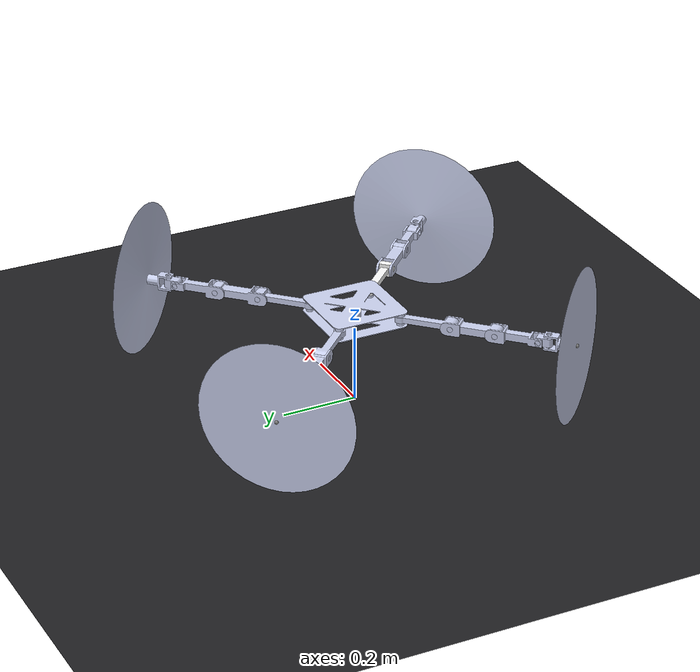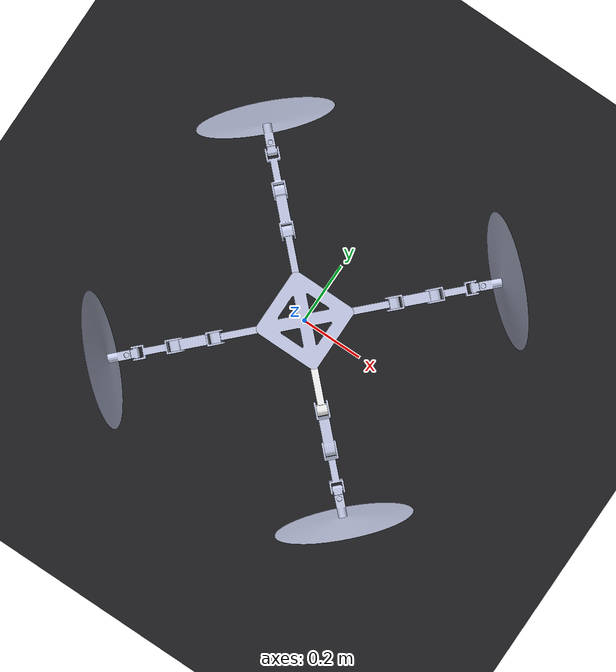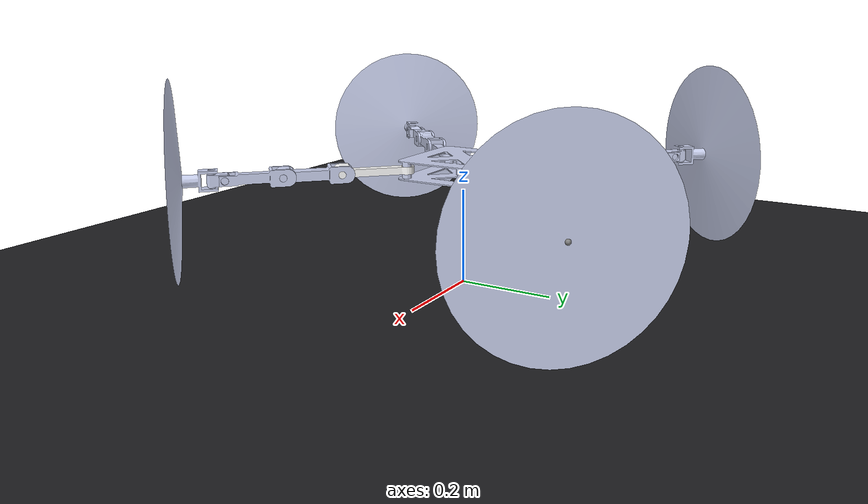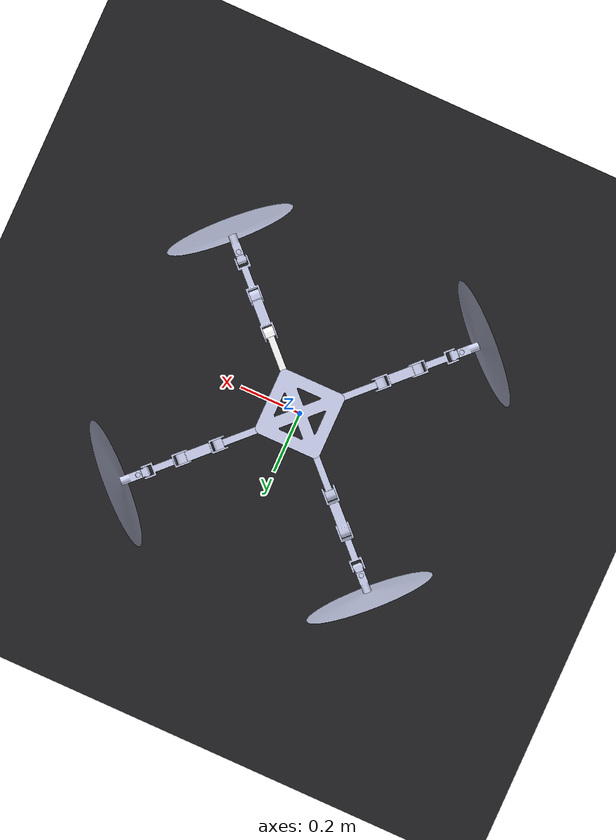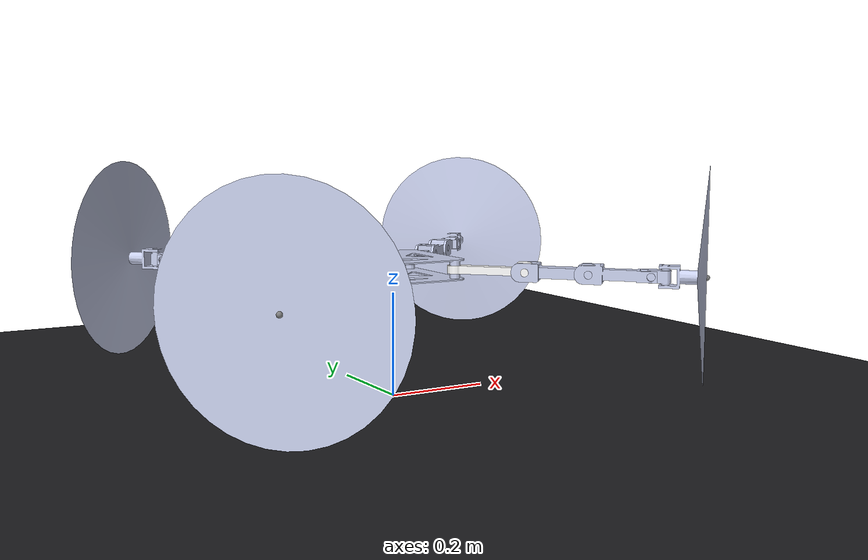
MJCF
<mujoco model="JellyFish">
  <include file="JellyFish.xml"/>

  <visual>
    <headlight diffuse="0.6 0.6 0.6" ambient="0.1 0.1 0.1" specular="0 0 0"/>
    <rgba haze="0.3 0.3 0.3 1"/>
    <global azimuth="45" elevation="35.264" ellipsoidinertia="false"/>
  </visual>

  <asset>
    <texture type="skybox" builtin="gradient" rgb1="0.5 0.5 0.5" rgb2="0 0 0" width="512" height="3072"/>
    <texture type="2d" name="groundplane" builtin="checker" mark="edge" rgb1="0.15 0.15 0.17" rgb2="0.1 0.1 0.1"
      markrgb="0.3 0.3 0.3" width="100" height="100"/>
    <material name="groundplane" texture="groundplane" texuniform="true" texrepeat="2 2" reflectance="0"/>
  </asset>

  <worldbody>
    <light pos="0 0 10" dir="0 0 -1" directional="true"/>
    <geom name="floor" size="0 0 0.05" type="plane" material="groundplane" contype="2" conaffinity="1"/>
  </worldbody>
</mujoco>

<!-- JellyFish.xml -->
<mujoco model="JellyFish">
  <compiler angle="radian"/>

  <default>
    <default class="BLDC">
      <motor ctrlrange="0 13"/>
      <default class="visual">
        <geom group="2" type="mesh" contype="1" conaffinity="2"/>
      </default>
      <default class="collision">
        <geom group="3" type="box" contype="1" conaffinity="2"/>
        <default class="rotor">
          <geom type="ellipsoid" size=".13 .13 .01" contype="1" conaffinity="2"/>
        </default>
      </default>
      <site group="5"/>
    </default>
  </default>

  <asset>
    <mesh name="BODY" file="BODY.STL"/>
    <mesh name="Arm1_Link1" file="Arm1_Link1.STL"/>
    <mesh name="Arm1_Link2" file="Arm1_Link2.STL"/>
    <mesh name="Arm1_Link3" file="Arm1_Link3.STL"/>
    <mesh name="Arm1_Link4" file="Arm1_Link4.STL"/>
    <mesh name="Arm1_Link5" file="Arm1_Link5.STL"/>
    <mesh name="Arm2_Link1" file="Arm2_Link1.STL"/>
    <mesh name="Arm2_Link2" file="Arm2_Link2.STL"/>
    <mesh name="Arm2_Link3" file="Arm2_Link3.STL"/>
    <mesh name="Arm2_Link4" file="Arm2_Link4.STL"/>
    <mesh name="Arm2_Link5" file="Arm2_Link5.STL"/>
    <mesh name="Arm3_Link1" file="Arm3_Link1.STL"/>
    <mesh name="Arm3_Link2" file="Arm3_Link2.STL"/>
    <mesh name="Arm3_Link3" file="Arm3_Link3.STL"/>
    <mesh name="Arm3_Link4" file="Arm3_Link4.STL"/>
    <mesh name="Arm3_Link5" file="Arm3_Link5.STL"/>
    <mesh name="Arm4_Link1" file="Arm4_Link1.STL"/>
    <mesh name="Arm4_Link2" file="Arm4_Link2.STL"/>
    <mesh name="Arm4_Link3" file="Arm4_Link3.STL"/>
    <mesh name="Arm4_Link4" file="Arm4_Link4.STL"/>
    <mesh name="Arm4_Link5" file="Arm4_Link5.STL"/>
  </asset>

  <worldbody>
    <body name="BODY" pos="0 0 0.25">
      <joint type="free"/>
      <inertial pos="0 0 0" quat="1 1 0 0" mass="0.6845345" diaginertia="0.00360091 0.00691789 0.00360702"/>
      <geom type="mesh" mesh="BODY" rgba="0.79216 0.81961 0.93333 1" contype="1" conaffinity="2"/>
      <site name="imu" pos="0 0 0" quat="1 0 0 0"/>
      <geom class="collision" size="0.12 0.12 .02" pos="0 0 0" contype="1" conaffinity="2"/>

    <body name="Arm1_Link1" pos="0.0848528 0.0848528 0" quat="0.382683 0 0 -0.92388">
      <inertial pos="-0.0628864 -0.00030071 0.0115046" quat="0.432962 0.567439 0.525068 0.46353" mass="0.374106" diaginertia="0.00164276 0.00160619 0.000141896"/>
      <joint name="Arm3_joint1" pos="0 0 0" axis="0 0 1"/>
      <geom type="mesh" rgba="0.792157 0.819608 0.933333 1" mesh="Arm1_Link1" contype="1" conaffinity="2"/>
      <body name="Arm1_Link2" pos="-0.134 0 0" quat="0.707107 0.707107 0 0">
        <inertial pos="-0.0812353 0 0.00033993" quat="0.501818 0.498175 0.498175 0.501818" mass="0.13658" diaginertia="0.000183 0.000171008 2.96325e-05"/>
        <joint name="Arm3_joint2" pos="0 0 0" axis="0 0 -1"/>
        <geom type="mesh" rgba="0.792157 0.819608 0.933333 1" mesh="Arm1_Link2" contype="1" conaffinity="2"/>
        <body name="Arm1_Link3" pos="-0.115 0 0">
          <inertial pos="-0.0545139 -0.00013889 0.00012511" quat="0.503095 0.499879 0.497035 0.499972" mass="0.0415148" diaginertia="4.29713e-05 3.86412e-05 7.76758e-06"/>
          <joint name="Arm3_joint3" pos="0 0 0" axis="0 0 -1"/>
          <geom type="mesh" rgba="0.792157 0.819608 0.933333 1" mesh="Arm1_Link3" contype="1" conaffinity="2"/>
          <body name="Arm1_Link4" pos="-0.11 0 0">
            <inertial pos="-0.0120002 0.0005559 -0.000556" quat="0.270139 0.652173 0.271057 0.654388" mass="0.102003" diaginertia="2.88701e-05 2.767e-05 2.05299e-05"/>
            <joint name="Arm3_joint4" pos="0 0 0" axis="0 0 -1"/>
            <geom type="mesh" rgba="0.792157 0.819608 0.933333 1" mesh="Arm1_Link4" contype="1" conaffinity="2"/>
            <body name="Arm1_Link5" pos="-0.024 0 0" quat="0 0 0.707107 0.707107">
              <inertial pos="0.0497922 0 0.00013454" quat="1 0 0.000236013 0" mass="0.3734" diaginertia="0.00364513 0.0019397 0.00192912"/>
              <site name="thrust1" pos="0.071 0 0"/>
              <site name="torque1" pos="0.071 0 0"/>
              <joint name="Arm3_joint5" pos="0 0 0" axis="0 0 -1"/>
              <geom type="mesh" rgba="0.792157 0.819608 0.933333 1" mesh="Arm1_Link5" contype="1" conaffinity="2"/>
            </body>
          </body>
        </body>
      </body>
    </body>
    <body name="Arm2_Link1" pos="-0.084853 0.084853 0" quat="0.923879 0 0 -0.382684">
      <inertial pos="-0.0628864 -0.00030071 0.0115046" quat="0.432962 0.567439 0.525068 0.46353" mass="0.374106" diaginertia="0.00164276 0.00160619 0.000141896"/>
      <joint name="Arm2_joint1" pos="0 0 0" axis="0 0 1"/>
      <geom type="mesh" rgba="0.79216 0.81961 0.93333 1" mesh="Arm2_Link1" contype="1" conaffinity="2"/>
      <body name="Arm2_Link2" pos="-0.134 0 -0.0086518" quat="0.707105 0.707108 0 0">
        <inertial pos="-0.0812353 0 0.00033993" quat="0.501818 0.498175 0.498175 0.501818" mass="0.13658" diaginertia="0.000183 0.000171008 2.96325e-05"/>
        <joint name="Arm2_joint2" pos="0 0 0" axis="0 0 -1"/>
        <geom type="mesh" rgba="0.79216 0.81961 0.93333 1" mesh="Arm2_Link2" contype="1" conaffinity="2"/>
        <body name="Arm2_Link3" pos="-0.115 0 0">
          <inertial pos="-0.0545139 -0.00013889 0.00012511" quat="0.503095 0.499879 0.497035 0.499972" mass="0.0415148" diaginertia="4.29713e-05 3.86412e-05 7.76758e-06"/>
          <joint name="Arm2_joint3" pos="0 0 0" axis="0 0 -1"/>
          <geom type="mesh" rgba="0.79216 0.81961 0.93333 1" mesh="Arm2_Link3" contype="1" conaffinity="2"/>
          <body name="Arm2_Link4" pos="-0.11 0.00865181 0">
            <inertial pos="-0.0120002 0.0005559 -0.000556" quat="0.270139 0.652173 0.271057 0.654388" mass="0.102003" diaginertia="2.88701e-05 2.767e-05 2.05299e-05"/>
            <joint name="Arm2_joint4" pos="0 0 0" axis="0 0 -1"/>
            <geom type="mesh" rgba="0.792157 0.819608 0.933333 1" mesh="Arm2_Link4" contype="1" conaffinity="2"/>
            <body name="Arm2_Link5" pos="-0.024 -0.0086518 0" quat="-2.59734e-06 -2.59735e-06 0.707108 0.707105">
              <inertial pos="0.0497922 0 0.00013454" quat="1 0 0.000236013 0" mass="0.3734" diaginertia="0.00364513 0.0019397 0.00192912"/>
              <site name="thrust2" pos="0.071 0 0"/>
              <site name="torque2" pos="0.071 0 0"/>
              <joint name="Arm2_joint5" pos="0 0 0" axis="0 0 -1"/>
              <geom type="mesh" rgba="0.792157 0.819608 0.933333 1" mesh="Arm2_Link5" contype="1" conaffinity="2"/>
            </body>
          </body>
        </body>
      </body>
    </body>
    <body name="Arm3_Link1" pos="-0.084853 -0.084853 0" quat="0.923879 0 0 0.382684">
      <inertial pos="-0.0628864 -0.00030071 0.0115046" quat="0.432962 0.567439 0.525068 0.46353" mass="0.374106" diaginertia="0.00164276 0.00160619 0.000141896"/>
      <joint name="Arm1_joint1" pos="0 0 0" axis="0 0 1"/>
      <geom type="mesh" rgba="0.792157 0.819608 0.933333 1" mesh="Arm3_Link1" contype="1" conaffinity="2"/>
      <body name="Arm3_Link2" pos="-0.134 0 0" quat="0.707107 0.707107 0 0">
        <inertial pos="-0.0812353 0 0.00033993" quat="0.501818 0.498175 0.498175 0.501818" mass="0.13658" diaginertia="0.000183 0.000171008 2.96325e-05"/>
        <joint name="Arm1_joint2" pos="0 0 0" axis="0 0 -1"/>
        <geom type="mesh" rgba="0.792157 0.819608 0.933333 1" mesh="Arm3_Link2" contype="1" conaffinity="2"/>
        <body name="Arm3_Link3" pos="-0.115 0 0">
          <inertial pos="-0.0545139 -0.00013889 0.00012511" quat="0.503095 0.499879 0.497035 0.499972" mass="0.0415148" diaginertia="4.29713e-05 3.86412e-05 7.76758e-06"/>
          <joint name="Arm1_joint3" pos="0 0 0" axis="0 0 -1"/>
          <geom type="mesh" rgba="0.792157 0.819608 0.933333 1" mesh="Arm3_Link3" contype="1" conaffinity="2"/>
          <body name="Arm3_Link4" pos="-0.110001 0 0">
            <inertial pos="-0.0120002 0.0005559 -0.000556" quat="0.270139 0.652173 0.271057 0.654388" mass="0.102003" diaginertia="2.88701e-05 2.767e-05 2.05299e-05"/>
            <joint name="Arm1_joint4" pos="0 0 0" axis="0 0 -1"/>
            <geom type="mesh" rgba="0.792157 0.819608 0.933333 1" mesh="Arm3_Link4" contype="1" conaffinity="2"/>
            <body name="Arm3_Link5" pos="-0.0239992 0 0" quat="0 0 -0.707107 -0.707107">
              <inertial pos="0.0497922 0 0.00013454" quat="1 0 0.000236013 0" mass="0.3734" diaginertia="0.00364513 0.0019397 0.00192912"/>
              <site name="thrust3" pos="0.071 0 0"/>
              <site name="torque3" pos="0.071 0 0"/>
              <joint name="Arm1_joint5" pos="0 0 0" axis="0 0 -1"/>
              <geom type="mesh" rgba="0.792157 0.819608 0.933333 1" mesh="Arm3_Link5" contype="1" conaffinity="2"/>
            </body>
          </body>
        </body>
      </body>
    </body>
    <body name="Arm4_Link1" pos="0.0848528 -0.0848528 0" quat="0.382683 0 0 0.92388">
      <inertial pos="-0.0628864 -0.00030071 0.0115046" quat="0.432962 0.567439 0.525068 0.46353" mass="0.374106" diaginertia="0.00164276 0.00160619 0.000141896"/>
      <joint name="Arm4_joint1" pos="0 0 0" axis="0 0 1"/>
      <geom type="mesh" rgba="1 1 1 1" mesh="Arm4_Link1" contype="1" conaffinity="2"/>
      <body name="Arm4_Link2" pos="-0.134 0 0" quat="0.707107 0.707107 0 0">
        <inertial pos="-0.0812353 0 0.00033993" quat="0.501818 0.498175 0.498175 0.501818" mass="0.13658" diaginertia="0.000183 0.000171008 2.96325e-05"/>
        <joint name="Arm4_joint2" pos="0 0 0" axis="0 0 -1"/>
        <geom type="mesh" rgba="0.792157 0.819608 0.933333 1" mesh="Arm4_Link2" contype="1" conaffinity="2"/>
        <body name="Arm4_Link3" pos="-0.115 0 0">
          <inertial pos="-0.0545139 -0.00013889 0.00012511" quat="0.503095 0.499879 0.497035 0.499972" mass="0.0415148" diaginertia="4.29713e-05 3.86412e-05 7.76758e-06"/>
          <joint name="Arm4_joint3" pos="0 0 0" axis="0 0 -1"/>
          <geom type="mesh" rgba="0.792157 0.819608 0.933333 1" mesh="Arm4_Link3" contype="1" conaffinity="2"/>
          <body name="Arm4_Link4" pos="-0.11 0 0">
            <inertial pos="-0.0120002 0.0005559 -0.000556" quat="0.270139 0.652173 0.271057 0.654388" mass="0.102003" diaginertia="2.88701e-05 2.767e-05 2.05299e-05"/>
            <joint name="Arm4_joint4" pos="0 0 0" axis="0 0 -1"/>
            <geom type="mesh" rgba="0.792157 0.819608 0.933333 1" mesh="Arm4_Link4" contype="1" conaffinity="2"/>
            <body name="Arm4_Link5" pos="-0.024 0 0" quat="0 0 0.707107 0.707107">
              <inertial pos="0.0497922 0 0.00013454" quat="1 0 0.000236013 0" mass="0.3734" diaginertia="0.00364513 0.0019397 0.00192912"/>
              <site name="thrust4" pos="0.071 0 0"/>
              <site name="torque4" pos="0.071 0 0"/>
              <joint name="Arm4_joint5" pos="0 0 0" axis="0 0 -1"/>
              <geom type="mesh" rgba="0.792157 0.819608 0.933333 1" mesh="Arm4_Link5" contype="1" conaffinity="2"/>
            </body>
          </body>
        </body>
      </body>
    </body>
  </body>
  </worldbody>

  <actuator>
    <!-- Thrusters -->
    <motor class="BLDC" name="thrust1" site="thrust1" gear="1 0 0 0 0 0" ctrlrange="0 50"/>
    <motor class="BLDC" name="thrust2" site="thrust2" gear="1 0 0 0 0 0" ctrlrange="0 50"/>
    <motor class="BLDC" name="thrust3" site="thrust3" gear="1 0 0 0 0 0" ctrlrange="0 50"/>
    <motor class="BLDC" name="thrust4" site="thrust4" gear="1 0 0 0 0 0" ctrlrange="0 50"/>
    <motor class="BLDC" name="torque1" site="torque1" gear="0 0 0 1 0 0" ctrlrange="-3.0 3.0"/>
    <motor class="BLDC" name="torque2" site="torque2" gear="0 0 0 1 0 0" ctrlrange="-3.0 3.0"/>
    <motor class="BLDC" name="torque3" site="torque3" gear="0 0 0 1 0 0" ctrlrange="-3.0 3.0"/>
    <motor class="BLDC" name="torque4" site="torque4" gear="0 0 0 1 0 0" ctrlrange="-3.0 3.0"/>
    <!-- Arm1 -->
    <position name="servo_Arm1_joint1" joint="Arm1_joint1" kp="30" kv="0.1" ctrlrange="-2.00713 2.00713"/>
    <position name="servo_Arm1_joint2" joint="Arm1_joint2" kp="30" kv="0.1"  ctrlrange="-2.00713 2.00713"/>
    <position name="servo_Arm1_joint3" joint="Arm1_joint3" kp="30" kv="0.1"  ctrlrange="-2.00713 2.00713"/>
    <position name="servo_Arm1_joint4" joint="Arm1_joint4" kp="30" kv="0.1" ctrlrange="-1.13446 -3.14159"/>
    <position name="servo_Arm1_joint5" joint="Arm1_joint5" kp="30" kv="0.1" ctrlrange="-1.74533 1.74533"/>
    <!-- Arm2 -->
    <position name="servo_Arm2_joint1" joint="Arm2_joint1" kp="30" kv="0.1" ctrlrange="-2.00713 2.00713"/>
    <position name="servo_Arm2_joint2" joint="Arm2_joint2" kp="30" kv="0.1" ctrlrange="-2.00713 2.00713"/>
    <position name="servo_Arm2_joint3" joint="Arm2_joint3" kp="30" kv="0.1" ctrlrange="-2.00713 2.00713"/>
    <position name="servo_Arm2_joint4" joint="Arm2_joint4" kp="30" kv="0.1" ctrlrange="-1.13446 -3.14159"/>
    <position name="servo_Arm2_joint5" joint="Arm2_joint5" kp="30" kv="0.1" ctrlrange="-1.74533 1.74533"/>
    <!-- Arm3 -->
    <position name="servo_Arm3_joint1" joint="Arm3_joint1" kp="30" kv="0.1" ctrlrange="-2.00713 2.00713"/>
    <position name="servo_Arm3_joint2" joint="Arm3_joint2" kp="30" kv="0.1" ctrlrange="-2.00713 2.00713"/>
    <position name="servo_Arm3_joint3" joint="Arm3_joint3" kp="30" kv="0.1" ctrlrange="-2.00713 2.00713"/>
    <position name="servo_Arm3_joint4" joint="Arm3_joint4" kp="30" kv="0.1" ctrlrange="-1.13446 -3.14159"/>
    <position name="servo_Arm3_joint5" joint="Arm3_joint5" kp="30" kv="0.1" ctrlrange="-1.74533 1.74533"/>
    <!-- Arm4 -->
    <position name="servo_Arm4_joint1" joint="Arm4_joint1" kp="30" kv="0.1" ctrlrange="-2.00713 2.00713"/>
    <position name="servo_Arm4_joint2" joint="Arm4_joint2" kp="30" kv="0.1" ctrlrange="-2.00713 2.00713"/>
    <position name="servo_Arm4_joint3" joint="Arm4_joint3" kp="30" kv="0.1" ctrlrange="-2.00713 2.00713"/>
    <position name="servo_Arm4_joint4" joint="Arm4_joint4" kp="30" kv="0.1" ctrlrange="-1.13446 -3.14159"/>
    <position name="servo_Arm4_joint5" joint="Arm4_joint5" kp="30" kv="0.1" ctrlrange="-1.74533 1.74533"/>

  </actuator>

    <sensor>
    <gyro name="body_gyro" site="imu"/>
    <accelerometer name="body_linacc" site="imu"/>
    <framequat name="body_quat" objtype="site" objname="imu"/>
  </sensor>

</mujoco>
